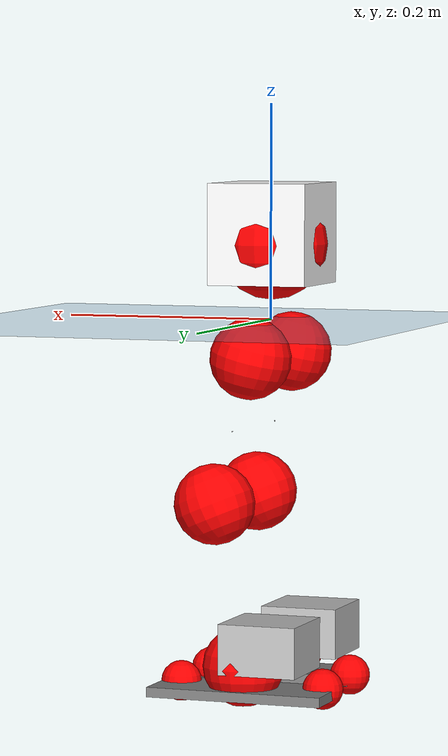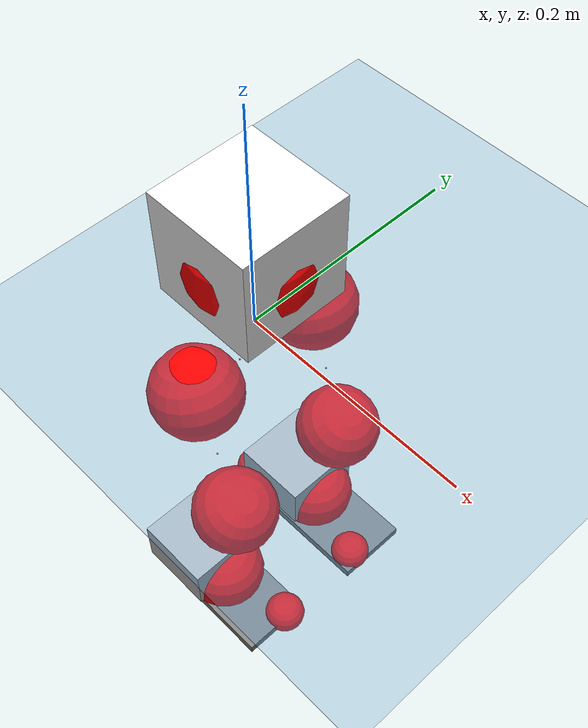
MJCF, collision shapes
<mujoco model="pi_12dof_release_v1">
  <compiler angle="radian" assetdir="assets" balanceinertia="true" inertiafromgeom="false"/>

  <option timestep="0.005" density="1.2" viscosity="2e-05"/>

  <size nkey="1"/>

  <visual>
    <quality shadowsize="8192"/>
    <map shadowclip="0.5"/>
  </visual>

  <default>
    <default class="/">
      <joint armature="0.01" damping="0.01" frictionloss="0.01"/>
      <geom contype="0" conaffinity="0" group="1" solref="-1000 -80"/>
      <site size="0.01 0.005 0.005" group="5"/>
      <general forcelimited="true" biastype="affine" gainprm="20" biasprm="0 -20 -0.5"/>
      <default class="foot">
        <geom size="0.0845 0.036 0.005" type="box" condim="6" group="4" priority="1" friction="0.9 0.2 0.2" solimp="0.015 1 0.005"/>
      </default>
      <default class="reward_collision_sphere">
        <geom group="5" rgba="1 0 0 1"/>
      </default>
    </default>
  </default>

  <asset>
    <texture type="skybox" colorspace="auto" name="//unnamed_texture_0" builtin="gradient" rgb1="0.95 0.95 0.95" rgb2="0.95 0.95 0.95" width="100" height="600"/>
    <texture type="2d" colorspace="auto" name="texplane" builtin="checker" rgb1="0.345 0.575 0.748" rgb2="0.345 0.575 0.748" markrgb="1 1 1" width="512" height="512"/>
    <material name="MatPlane" class="/" texture="texplane" texuniform="true" texrepeat="2 2" specular="0.9"/>
    <mesh name="baselink_1" class="/" file="baselink_1.STL"/>
    <mesh name="r_hip_pitch_link" class="/" file="r_hip_pitch_link.STL"/>
    <mesh name="r_hip_roll_link" class="/" file="r_hip_roll_link.STL"/>
    <mesh name="r_thigh_link" class="/" file="r_thigh_link.STL"/>
    <mesh name="r_calf_link" class="/" file="r_calf_link.STL"/>
    <mesh name="r_ankle_pitch_link" class="/" file="r_ankle_pitch_link.STL"/>
    <mesh name="r_ankle_roll_link" class="/" file="r_ankle_roll_link.STL"/>
    <mesh name="l_hip_pitch_link" class="/" file="l_hip_pitch_link.STL"/>
    <mesh name="l_hip_roll_link" class="/" file="l_hip_roll_link.STL"/>
    <mesh name="l_thigh_link" class="/" file="l_thigh_link.STL"/>
    <mesh name="l_calf_link" class="/" file="l_calf_link.STL"/>
    <mesh name="l_ankle_pitch_link" class="/" file="l_ankle_pitch_link.STL"/>
    <mesh name="l_ankle_roll_link" class="/" file="l_ankle_roll_link.STL"/>
  </asset>

  <worldbody>
    <geom name="floor" class="/" size="100 100 0.125" type="plane" group="0" material="MatPlane"/>
    <light name="toplight_shadow" class="/" pos="0 0 5" dir="0.0990148 0.0990148 -0.990148" type="directional" ambient="0.04 0.04 0.04" diffuse="0.55 0.55 0.55" specular="0.12 0.12 0.12"/>
    <light name="toplight_fill" class="/" pos="0 0 5" dir="0.0990148 0.0990148 -0.990148" type="directional" castshadow="false" ambient="0.04 0.04 0.04" diffuse="0.3 0.3 0.3" specular="0.08 0.08 0.08"/>
    <body name="trunk" pos="-0.00127742 0.000478966 0.000728228" quat="1 6.45878e-05 -3.66678e-05 3.25127e-05">
      <inertial pos="0.000804603 -0.00014574 0.0403081" quat="0.69738 0.0115563 0.00961516 0.716544" mass="1.77494" diaginertia="0.0109136 0.00289072 0.0040672"/>
      <joint name="//unnamed_joint_0" type="free"/>
      <geom name="//unnamed_geom_1" class="/" type="mesh" density="0" rgba="1 1 1 1" mesh="baselink_1"/>
      <geom name="//unnamed_geom_2" class="/" size="0.0468663 0.0468663 0.0468663" pos="0 0 0.0794959" type="box" rgba="1 1 1 1"/>
      <geom name="//unnamed_geom_3" class="reward_collision_sphere" size="0.0515529" pos="0 0 0.0695589"/>
      <site name="imu" class="/" pos="-0.00138829 -0.00298593 8.99136e-05" size="0.00937326"/>
      <camera name="track" class="/" pos="0 -1.5929 0" quat="0.707107 0.707107 0 0" mode="trackcom"/>
      <camera name="ego_camera" class="/" pos="0.0766373 0 0.178866" quat="-0.5 -0.5 0.5 0.5"/>
      <body name="r_hip_pitch_link" pos="0.00048572 -0.0166901 -0.0338083" quat="0.992235 0.000216902 -0.124378 -0.000339829">
        <inertial pos="-0.000499151 -0.0440626 0.00112129" quat="-0.0196415 0.706091 -0.0272163 0.707325" mass="0.305213" diaginertia="0.000121022 3.12503e-05 8.01135e-05"/>
        <joint name="r_hip_pitch_joint" class="/" pos="0 0 0" axis="0.00134014 -0.999978 -0.00649254" range="-1.74652 1.24304" armature="0.00935193" damping="0.0162094" frictionloss="0.00917986"/>
        <geom name="//unnamed_geom_4" class="/" type="mesh" density="0" rgba="0.75294 0.75294 0.75294 1" mesh="r_hip_pitch_link"/>
        <geom name="//unnamed_geom_5" class="/" size="0.000468663 0.000468663 0.000468663" type="box" rgba="0.75294 0.75294 0.75294 1"/>
        <body name="r_hip_roll_link" pos="0.000304596 -0.0440507 -0.000565329" quat="1 -3.60506e-06 3.59589e-06 -3.22929e-06">
          <inertial pos="0.000288143 6.59985e-05 -0.0607704" quat="0.706158 -0.0786799 -0.082535 0.698812" mass="0.320261" diaginertia="0.000372676 8.93957e-05 0.00012586"/>
          <joint name="r_hip_roll_joint" class="/" pos="0 0 0" axis="-1 1.06314e-05 0.000979279" range="-0.125314 0.477559" armature="0.00893749" damping="0.00574186" frictionloss="0.00922548"/>
          <geom name="//unnamed_geom_6" class="/" type="mesh" density="0" rgba="0.75294 0.75294 0.75294 1" mesh="r_hip_roll_link"/>
          <geom name="//unnamed_geom_7" class="/" size="0.000468663 0.000468663 0.000468663" type="box" rgba="0.75294 0.75294 0.75294 1"/>
          <geom name="//unnamed_geom_8" class="reward_collision_sphere" size="0.037493"/>
          <body name="r_thigh_link" pos="-1.91419e-05 0.000594566 -0.0688584" quat="1 -0.00015298 -0.000283859 0.00023883">
            <inertial pos="-0.000339792 0.000116993 -0.0470208" quat="0.735613 0.677399 -0.00100669 -0.00195301" mass="0.0928014" diaginertia="0.000139986 2.99918e-05 5.66211e-05"/>
            <joint name="r_thigh_joint" class="/" pos="0 0 0" axis="-0.00143413 -0.00215678 -0.999997" range="-0.303331 0.577656" armature="0.00910309" damping="0.0002618" frictionloss="0.00947574"/>
            <geom name="//unnamed_geom_9" class="/" type="mesh" density="0" rgba="0.75294 0.75294 0.75294 1" mesh="r_thigh_link"/>
            <geom name="//unnamed_geom_10" class="/" size="0.000468663 0.000468663 0.000468663" type="box" rgba="0.75294 0.75294 0.75294 1"/>
            <body name="r_calf_link" pos="1.42573e-06 -0.000591999 -0.0695386" quat="0.94772 0.000292092 0.319102 -0.000222808">
              <inertial pos="-0.000458885 -0.00093885 -0.0693867" quat="0.999976 -0.00338731 0.00102728 0.00592242" mass="0.681839" diaginertia="0.0038723 0.00110938 0.000169637"/>
              <joint name="r_calf_joint" class="/" pos="0 0 0" axis="-0.000288725 -0.999999 0.0015882" stiffness="0.000475101" range="-1.64633 0.636635" armature="0.0102343" damping="0" frictionloss="0.0101295"/>
              <geom name="//unnamed_geom_11" class="/" type="mesh" density="0" rgba="0.75294 0.75294 0.75294 1" mesh="r_calf_link"/>
              <geom name="//unnamed_geom_12" class="/" size="0.000468663 0.000468663 0.000468663" type="box" rgba="0.75294 0.75294 0.75294 1"/>
              <geom name="//unnamed_geom_13" class="reward_collision_sphere" size="0.037493"/>
              <body name="r_ankle_pitch_link" pos="0.000534555 -0.000103274 -0.138758" quat="0.98017 -0.00024086 -0.198159 0.000353076">
                <inertial pos="0.00526066 0.00125675 -0.000102405" quat="0.000583947 0.706952 -0.000446988 0.707261" mass="0.142951" diaginertia="0.000346188 7.23951e-05 0.000116769"/>
                <joint name="r_ankle_pitch_joint" class="/" pos="0 0 0" axis="-0.0044033 -0.999957 -0.00813613" range="-1.3004 0.500674" armature="0.00907518" damping="0.00956772" frictionloss="0.00964011"/>
                <geom name="//unnamed_geom_14" class="/" type="mesh" density="0" rgba="0.75294 0.75294 0.75294 1" mesh="r_ankle_pitch_link"/>
                <geom name="//unnamed_geom_15" class="/" size="0.0365557 0.037493 0.0234331" type="box" rgba="0.75294 0.75294 0.75294 1"/>
                <body name="r_ankle_roll_link" pos="0.0776453 0.00208447 -0.000440217" quat="1 6.04461e-06 7.15862e-06 -4.66122e-06">
                  <inertial pos="-0.0255931 0.000208511 -0.0144682" quat="0.559099 0.432764 0.434401 0.55805" mass="0.42864" diaginertia="0.00127187 0.000333064 0.00027425"/>
                  <joint name="r_ankle_roll_joint" class="/" pos="0 0 0" axis="-0.999944 -0.00958373 -0.00448192" range="-0.154647 0.145219" armature="0.00959997" damping="0.00671811" frictionloss="0.00935511"/>
                  <geom name="//unnamed_geom_16" class="/" type="mesh" density="0" rgba="0.75294 0.75294 0.75294 1" mesh="r_ankle_roll_link"/>
                  <geom name="//unnamed_geom_17" class="/" type="mesh" rgba="0.75294 0.75294 0.75294 1" mesh="r_ankle_roll_link"/>
                  <geom name="right_foot" class="foot" size="0.0730566 0.0323486 0.0047732" pos="-0.0521133 0 -0.0437227"/>
                  <geom name="//unnamed_geom_19" class="reward_collision_sphere" size="0.037493" pos="-0.0510915 0 -0.019874"/>
                  <geom name="//unnamed_geom_20" class="reward_collision_sphere" size="0.0187465" pos="0.0153275 0.015929 -0.0397479"/>
                  <geom name="//unnamed_geom_21" class="reward_collision_sphere" size="0.0187465" pos="-0.12262 0.015929 -0.0397479"/>
                  <site name="right_foot" class="foot" pos="-0.0521133 0 -0.0437227" size="0.00937326"/>
                </body>
              </body>
            </body>
          </body>
        </body>
      </body>
      <body name="l_hip_pitch_link" pos="-3.25598e-05 0.0180233 -0.0327774" quat="0.992128 0.000829857 -0.125224 -0.000106016">
        <inertial pos="0.00213686 0.0428312 -0.000450635" quat="-0.0384323 0.705451 0.0294967 0.707101" mass="0.320991" diaginertia="0.000142593 3.34344e-05 9.71223e-05"/>
        <joint name="l_hip_pitch_joint" class="/" pos="0 0 0" axis="-0.00109705 0.999999 0.000532933" stiffness="0.00117486" range="-1.26455 1.7454" armature="0.00931856" damping="0.00316176" frictionloss="0.00897927"/>
        <geom name="//unnamed_geom_22" class="/" type="mesh" density="0" rgba="0.75294 0.75294 0.75294 1" mesh="l_hip_pitch_link"/>
        <geom name="//unnamed_geom_23" class="/" size="0.000468663 0.000468663 0.000468663" type="box" rgba="0.75294 0.75294 0.75294 1"/>
        <body name="l_hip_roll_link" pos="-0.000449084 0.0438696 9.59463e-05" quat="1 0.000420827 -0.000116689 0.00027444">
          <inertial pos="-0.0011978 -0.000266943 -0.061208" quat="0.699584 -0.0728287 -0.0798211 0.706333" mass="0.318737" diaginertia="0.000370951 8.90246e-05 0.000123923"/>
          <joint name="l_hip_roll_joint" class="/" pos="0 0 0" axis="-0.999985 -0.0039069 -0.00371053" stiffness="0.000808062" range="-0.495269 0.131607" armature="0.00923374" damping="0" frictionloss="0.00891721"/>
          <geom name="//unnamed_geom_24" class="/" type="mesh" density="0" rgba="0.75294 0.75294 0.75294 1" mesh="l_hip_roll_link"/>
          <geom name="//unnamed_geom_25" class="/" size="0.000468663 0.000468663 0.000468663" type="box" rgba="0.75294 0.75294 0.75294 1"/>
          <geom name="//unnamed_geom_26" class="reward_collision_sphere" size="0.037493"/>
          <body name="l_thigh_link" pos="0.000545722 -0.000710165 -0.0696636" quat="1 -1.22891e-05 -1.9596e-06 6.69145e-06">
            <inertial pos="0.000468175 -0.00148618 -0.0484093" quat="0.675252 0.737587 0.000540675 0.000407823" mass="0.0931627" diaginertia="0.000139385 3.02971e-05 5.6433e-05"/>
            <joint name="l_thigh_joint" class="/" pos="0 0 0" axis="4.34528e-05 0.00173631 -0.999998" range="-0.60096 0.285569" armature="0.00985732" damping="0.00390915" frictionloss="0.0091463"/>
            <geom name="//unnamed_geom_27" class="/" type="mesh" density="0" rgba="0.75294 0.75294 0.75294 1" mesh="l_thigh_link"/>
            <geom name="//unnamed_geom_28" class="/" size="0.000468663 0.000468663 0.000468663" type="box" rgba="0.75294 0.75294 0.75294 1"/>
            <body name="l_calf_link" pos="-7.14945e-05 -0.000276028 -0.0697409" quat="0.947625 6.39705e-05 0.319386 2.04108e-05">
              <inertial pos="0.000297654 0.00209977 -0.0697575" quat="0.999991 0.00316566 -0.00255626 0.00114883" mass="0.670505" diaginertia="0.0038842 0.00111248 0.00017099"/>
              <joint name="l_calf_joint" class="/" pos="0 0 0" axis="-0.0020373 0.999998 -0.000247944" stiffness="0.00334584" range="-0.660313 1.66234" armature="0.00869594" damping="0.0062785" frictionloss="0.0100072"/>
              <geom name="//unnamed_geom_29" class="/" type="mesh" density="0" rgba="0.75294 0.75294 0.75294 1" mesh="l_calf_link"/>
              <geom name="//unnamed_geom_30" class="/" size="0.000468663 0.000468663 0.000468663" type="box" rgba="0.75294 0.75294 0.75294 1"/>
              <geom name="//unnamed_geom_31" class="reward_collision_sphere" size="0.037493"/>
              <body name="l_ankle_pitch_link" pos="0.00016998 0.00151535 -0.139248" quat="0.980084 0.000335873 -0.198582 0.00022081">
                <inertial pos="0.00501671 0.000215275 -0.000337803" quat="-0.0018677 0.707565 0.00208967 0.706643" mass="0.147797" diaginertia="0.000349049 7.14594e-05 0.000115752"/>
                <joint name="l_ankle_pitch_joint" class="/" pos="0 0 0" axis="0.00222617 0.999997 0.00111311" range="-0.51235 1.30268" armature="0.00937519" damping="0.00443511" frictionloss="0.00897194"/>
                <geom name="//unnamed_geom_32" class="/" type="mesh" density="0" rgba="0.75294 0.75294 0.75294 1" mesh="l_ankle_pitch_link"/>
                <geom name="//unnamed_geom_33" class="/" size="0.0365557 0.037493 0.0234331" type="box" rgba="0.75294 0.75294 0.75294 1"/>
                <body name="l_ankle_roll_link" pos="0.0755064 0.00123023 0.00041718" quat="1 0.000128187 4.29385e-06 3.23287e-06">
                  <inertial pos="-0.0235111 8.60741e-05 -0.0154045" quat="0.561026 0.427591 0.433814 0.560555" mass="0.427968" diaginertia="0.00122376 0.000326087 0.000267492"/>
                  <joint name="l_ankle_roll_joint" class="/" pos="0 0 0" axis="-0.999999 0.000588392 -0.00155429" range="-0.150674 0.151126" armature="0.00930675" damping="0.00293944" frictionloss="0.00943609"/>
                  <geom name="//unnamed_geom_34" class="/" type="mesh" density="0" rgba="0.75294 0.75294 0.75294 1" mesh="l_ankle_roll_link"/>
                  <geom name="//unnamed_geom_35" class="/" type="mesh" rgba="0.75294 0.75294 0.75294 1" mesh="l_ankle_roll_link"/>
                  <geom name="left_foot" class="foot" size="0.083267 0.0346151 0.0045487" pos="-0.0521133 0 -0.0437227"/>
                  <geom name="//unnamed_geom_37" class="reward_collision_sphere" size="0.037493" pos="-0.0510915 0 -0.019874"/>
                  <geom name="//unnamed_geom_38" class="reward_collision_sphere" size="0.0187465" pos="0.0153275 -0.015929 -0.0397479"/>
                  <geom name="//unnamed_geom_39" class="reward_collision_sphere" size="0.0187465" pos="-0.12262 -0.015929 -0.0397479"/>
                  <site name="left_foot" class="foot" pos="-0.0521133 0 -0.0437227" size="0.00937326"/>
                </body>
              </body>
            </body>
          </body>
        </body>
      </body>
    </body>
  </worldbody>

  <contact>
    <pair class="/" geom1="floor" geom2="right_foot" name="//unnamed_contact_1"/>
    <pair class="/" geom1="floor" geom2="left_foot" name="//unnamed_contact_0"/>
  </contact>

  <actuator>
    <general name="r_hip_pitch_joint" class="/" joint="r_hip_pitch_joint" forcerange="-19.4348 19.4348" gainprm="19.0673" biasprm="0 -19.0673 -0.482958"/>
    <general name="r_hip_roll_joint" class="/" joint="r_hip_roll_joint" forcerange="-19.7393 19.7393" gainprm="19.0673" biasprm="0 -19.0673 -0.482958"/>
    <general name="r_thigh_joint" class="/" joint="r_thigh_joint" forcerange="-19.7386 19.7386" gainprm="19.0673" biasprm="0 -19.0673 -0.482958"/>
    <general name="r_calf_joint" class="/" joint="r_calf_joint" forcerange="-19.2901 19.2901" gainprm="19.0673" biasprm="0 -19.0673 -0.482958"/>
    <general name="r_ankle_pitch_joint" class="/" joint="r_ankle_pitch_joint" forcerange="-19.9866 19.9866" gainprm="19.0673" biasprm="0 -19.0673 -0.482958"/>
    <general name="r_ankle_roll_joint" class="/" joint="r_ankle_roll_joint" forcerange="-19.315 19.315" gainprm="19.0673" biasprm="0 -19.0673 -0.482958"/>
    <general name="l_hip_pitch_joint" class="/" joint="l_hip_pitch_joint" forcerange="-19.9213 19.9213" gainprm="19.0673" biasprm="0 -19.0673 -0.482958"/>
    <general name="l_hip_roll_joint" class="/" joint="l_hip_roll_joint" forcerange="-20.4129 20.4129" gainprm="19.0673" biasprm="0 -19.0673 -0.482958"/>
    <general name="l_thigh_joint" class="/" joint="l_thigh_joint" forcerange="-19.7115 19.7115" gainprm="19.0673" biasprm="0 -19.0673 -0.482958"/>
    <general name="l_calf_joint" class="/" joint="l_calf_joint" forcerange="-20.8869 20.8869" gainprm="19.0673" biasprm="0 -19.0673 -0.482958"/>
    <general name="l_ankle_pitch_joint" class="/" joint="l_ankle_pitch_joint" forcerange="-19.5991 19.5991" gainprm="19.0673" biasprm="0 -19.0673 -0.482958"/>
    <general name="l_ankle_roll_joint" class="/" joint="l_ankle_roll_joint" forcerange="-19.8316 19.8316" gainprm="19.0673" biasprm="0 -19.0673 -0.482958"/>
  </actuator>

  <sensor>
    <gyro site="imu" name="imu_angular_velocity"/>
    <velocimeter site="imu" name="imu_linear_velocity"/>
    <framelinvel objtype="site" objname="left_foot" name="left_foot_global_linear_velocity"/>
    <framelinvel objtype="site" objname="right_foot" name="right_foot_global_linear_velocity"/>
  </sensor>

  <keyframe>
    <key name="home" qpos="0 0 0.291 1 0 0 0 0.4 0 0 -0.8 0.4 0 -0.4 0 0 0.8 -0.4 0"/>
  </keyframe>
</mujoco>
